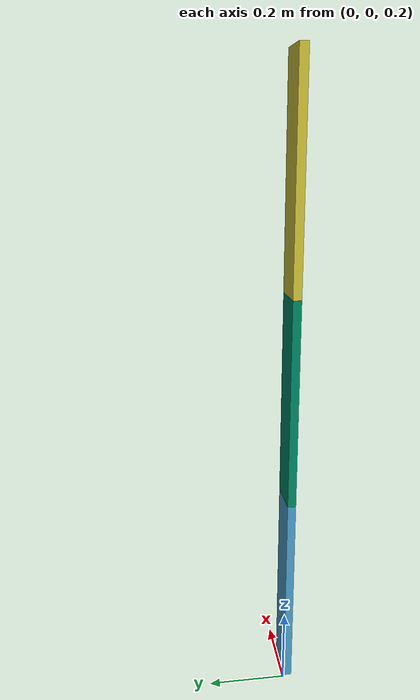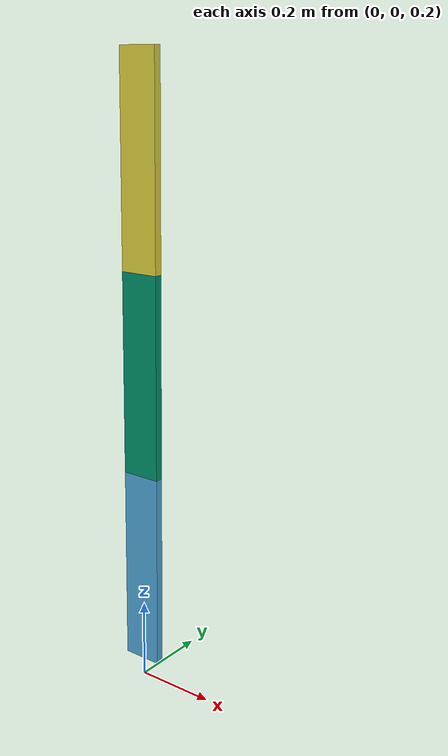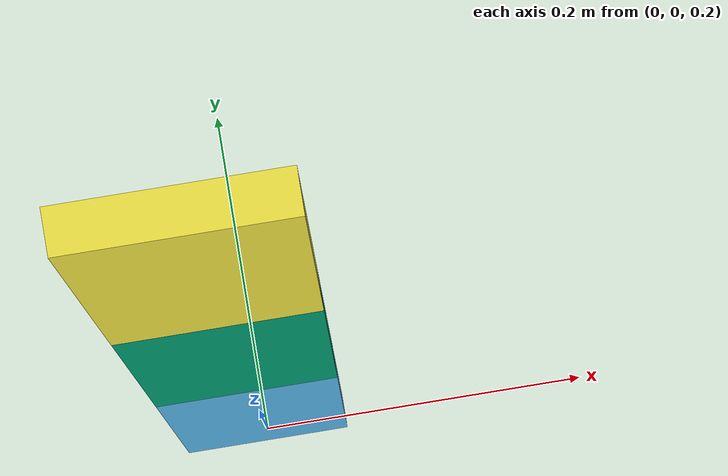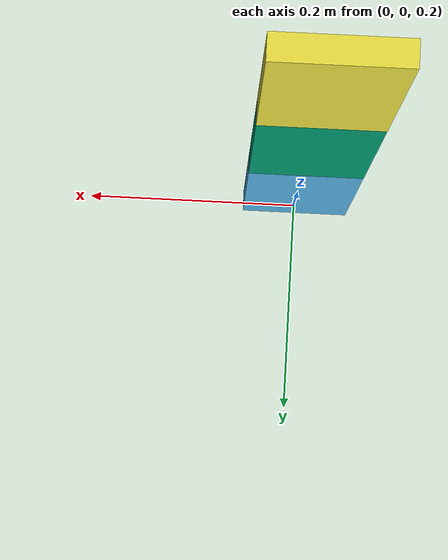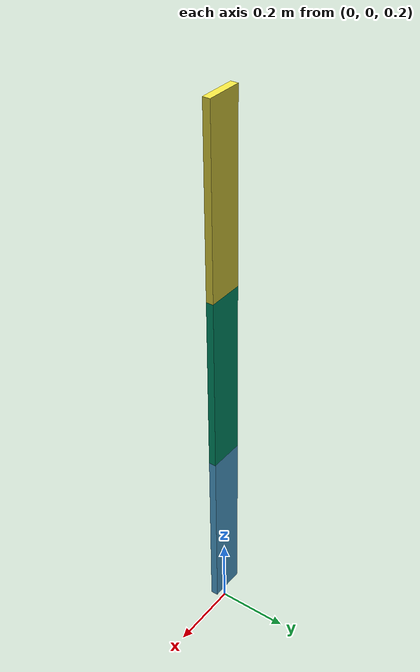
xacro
<?xml version="1.0"?>
<robot xmlns:sensor="http://playerstage.sourceforge.net/gazebo/xmlschema/#sensor"
       xmlns:controller="http://playerstage.sourceforge.net/gazebo/xmlschema/#controller"
       xmlns:interface="http://playerstage.sourceforge.net/gazebo/xmlschema/#interface"
       xmlns:xacro="http://ros.org/wiki/xacro"
       name="3dof_example">

  <include filename="$(find ipa_canopen_tutorials)/examples/3dof_with_trajectory_controller/urdf/modul.urdf.xacro" />

  <link name="base_link"/>

  <xacro:modul name="modul1" parent="base_link">
    <origin xyz="0 0 0.5" rpy="0 0 0" />
  </xacro:modul>

  <xacro:modul name="modul2" parent="modul1_link">
    <origin xyz="0 0 0.5" rpy="0 0 0" />
  </xacro:modul>

  <xacro:modul name="modul3" parent="modul2_link">
    <origin xyz="0 0 0.5" rpy="0 0 0" />
  </xacro:modul>

</robot>

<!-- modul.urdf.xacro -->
<robot xmlns:sensor="http://playerstage.sourceforge.net/gazebo/xmlschema/#sensor"
       xmlns:controller="http://playerstage.sourceforge.net/gazebo/xmlschema/#controller"
       xmlns:interface="http://playerstage.sourceforge.net/gazebo/xmlschema/#interface"
       xmlns:xacro="http://ros.org/wiki/xacro">

	<xacro:macro name="modul" params="parent name *origin">

		<joint name="${name}_joint" type="revolute">
			<insert_block name="origin" />
			<parent link="${parent}"/>
			<child link="${name}_link"/>
			<axis xyz="0 0 1"/>
			<limit effort="200" velocity="0.6" lower="-0.7854" upper="0.7854"/>
		</joint>

		<link name="${name}_link">
			<visual>
				<origin xyz="0 0 0" rpy="0 0 0" />
                <geometry>
                   <box size="0.1 0.02 0.5" />
                 </geometry>
			</visual>

			<collision>
				<origin xyz="0 0 0" rpy="0 0 0" />
				<geometry>
                   <box size="0.1 0.02 0.5" />
				</geometry>
			</collision>
		</link>

	</xacro:macro>

</robot>
